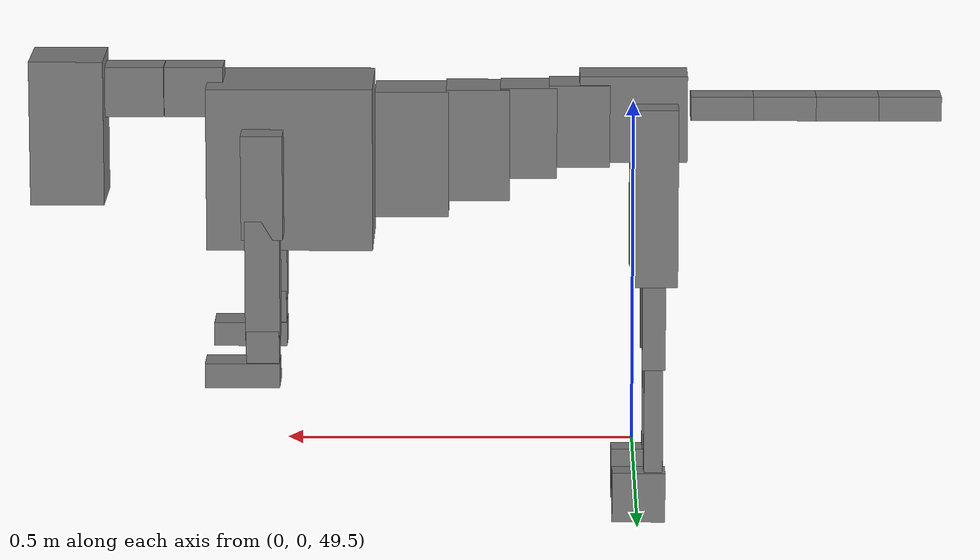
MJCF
<mujoco model="dog">

    <default>
        <joint armature="0.02" stiffness="1" damping="0.2" limited="true"/>
        <geom condim="3" friction="1 0.05 0.05" margin="0.01"/>
        <motor ctrllimited="true" ctrlrange="-1.0 1.0" forcelimited="true" gear="50"/>
    </default>

    <compiler inertiafromgeom="true" angle="radian"/>

    <option timestep="0.016" iterations="50" tolerance="1e-10" solver="Newton" jacobian="dense" cone="pyramidal"/>

    <size nconmax="20000" njmax="60000" nstack="5000000"/>
    <visual>
        <map force="0.1" zfar="30"/>
        <rgba haze="0.15 0.25 0.35 1"/>
        <quality shadowsize="2048"/>
        <global offwidth="800" offheight="800"/>
    </visual>

    <asset>
        <texture type="skybox" builtin="gradient" rgb1="0.3 0.5 0.7" rgb2="0 0 0" width="512" height="512"/>
        <texture name="texplane" type="2d" builtin="checker" rgb1=".2 .3 .4" rgb2=".1 0.15 0.2" width="512" height="512"
                 mark="cross" markrgb=".8 .8 .8"/>
        <texture name="texgeom" type="cube" builtin="flat" mark="cross" width="127" height="1278" rgb1="0.8 0.6 0.4"
                 rgb2="0.8 0.6 0.4" markrgb="1 1 1" random="0.01"/>

        <material name="matplane" reflectance="0.3" texture="texplane" texrepeat="1 1" texuniform="true"/>
        <material name="matgeom" texture="texgeom" texuniform="true" rgba="0.8 0.6 .4 1"/>
    </asset>

    <worldbody>
        <geom name="floor" pos="0 0 0" size="0 0 .25" type="plane" material="matplane" condim="3"/>

        <light directional="false" diffuse=".2 .2 .2" specular="0 0 0" pos="0 0 5" dir="0 0 -1" castshadow="false"/>
        <light mode="targetbodycom" target="torso" directional="false" diffuse=".8 .8 .8" specular="0.3 0.3 0.3"
               pos="0 0 4.0" dir="0 0 -1"/>

        <body name="root" pos="0 0 50">
            <freejoint name="root_1"/>
            <geom type="box" pos="0 0 -0.02" size="0.0774  0.0358  0.063" density="2030"/>

            <body name="spine1" pos="0.054 0 0">
                <joint name="spine1_y" axis="0 1 0" range="0 0.7" limited="true"/>
                <geom type="box" pos="0.02375 0 -0.03" size="0.04375  0.0375  0.05985" density="2030"/>

                <body name="spine2" pos="0.0612 0 0">
                    <joint name="spine2_y" axis="0 1 0" range="-0.15 0.15" limited="true"/>
                    <geom type="box" pos="0.03555  0  -0.04" size="0.04055  0.039  0.06615" density="2030"/>

                    <body name="spine3" pos="0.0730 0 0">
                        <joint name="spine3_y" axis="0 1 0" range="-0.15 0.15" limited="true"/>
                        <geom type="box" pos="0.03555  0  -0.057" size="0.04555  0.0445  0.081" density="2030"/>

                        <body name="spine4" pos="0.0780 0 0">
                            <joint name="spine4_y" axis="0 1 0" range="-0.15 0.15" limited="true"/>
                            <geom type="box" pos="0.05265  0  -0.07" size="0.05265  0.045  0.09135" density="2030"/>

                            <body name="torso" pos="0.1082 0 0">
                                <joint name="torso_y" axis="0 1 0" range="-0.15 0.15" limited="true"/>
                                <geom type="box" pos="0.11925  0  -0.085" size="0.11925  0.085  0.11745"
                                      density="2030"/>

                                <body name="neck1" pos="0.2160  0   0.0180">
                                    <joint name="neck1_y" axis="0 1 0" range="-1.2  -1" limited="true"/>
                                    <geom type="box" pos="0.0423  0  0" size="0.0423  0.03  0.036" density="2325"/>

                                    <body name="neck2" pos="0.0853  0  0">
                                        <joint name="neck2_y" axis="0 1 0" range="0.1  0" limited="true"/>
                                        <geom type="box" pos="0.0423  0  0" size="0.0423  0.03  0.036" density="2325"/>

                                        <body name="head" pos="0.0853  0  0">
                                            <joint name="head_y" axis="0 1 0" range="-0.3  -0.2" limited="true"/>
                                            <geom type="box" pos="0.0531  0  -0.055" size="0.0531  0.06  0.1044"
                                                  density="4030"/>

                                        </body>
                                    </body>
                                </body>

                                <body name="front_shoulder" pos="0.156  0   -0.0480">
                                    <joint name="front_shoulder_y" axis="0 1 0" range="-1 1.5" limited="true"/>
                                    <geom type="box" pos="0 0.13 -0.0486" size="0.0297  0.0254  0.0752" density="1158"/>
                                    <geom type="box" pos="0 -0.13 -0.0486" size="0.0297  0.0254  0.0752"
                                          density="1158"/>

                                    <body name="front_elbow" pos="0  0  -0.0971">
                                        <joint name="front_elbow_y" axis="0 1 0" range="-2 0" limited="true"/>
                                        <geom type="box" pos="0 0.13 -0.0867" size="0.0248  0.0254  0.0867"
                                              density="1081"/>
                                        <geom type="box" pos="0 -0.13 -0.0867" size="0.0248  0.0254  0.0867"
                                              density="1081"/>

                                        <body name="front_wrist" pos="0  0  -0.1735">
                                            <joint name="front_wrist_y" axis="0 1 0" range="-0.2 0" limited="true"/>
                                            <geom type="box" pos="0 0.13 -0.0243" size="0.0235  0.0261  0.0375"
                                                  density="1664"/>
                                            <geom type="box" pos="0 -0.13 -0.0243" size="0.0235  0.0261  0.0375"
                                                  density="1664"/>

                                            <body name="front_finger_end" pos="0  0  -0.0486">
                                                <joint name="front_finger_y" axis="0 1 0" range="-0.4 1"
                                                       limited="true"/>
                                                <geom type="box" pos="0.0291  0.13  -0.0026"
                                                      size="0.0534  0.0291  0.0176" density="1515"/>
                                                <geom type="box" pos="0.0291  -0.13  -0.0026"
                                                      size="0.0534  0.0291  0.0176" density="1515"/>

                                            </body>

                                        </body>
                                    </body>
                                </body>

                            </body>
                        </body>
                    </body>
                </body>
            </body>

            <body name="back_hip" pos="-0.03 0 -0.018">
                <joint name="back_hip_y" axis="0 1 0" range="-1.5 0.3" limited="true"/>
                <geom type="box" pos="0 0.07 -0.1065" size="0.0337  0.0264  0.1293" density="1154"/>
                <geom type="box" pos="0 -0.07 -0.1065" size="0.0337  0.0264  0.1293" density="1154"/>

                <body name="back_knee" pos="0  0  -0.2131">
                    <joint name="back_knee_y" axis="0 1 0" range="0 2.8" limited="true"/>
                    <geom type="box" pos="0 0.07 -0.0660" size="0.0168  0.0165  0.0815" density="1227"/>
                    <geom type="box" pos="0 -0.07 -0.0660" size="0.0168  0.0165  0.0815" density="1227"/>

                    <body name="back_ankle" pos="0  0  -0.1319">
                        <joint name="back_ankle_y" axis="0 1 0" range="-2.2 0" limited="true"/>
                        <geom type="box" pos="0 0.07 -0.0913" size="0.0137  0.0137  0.1026" density="1284"/>
                        <geom type="box" pos="0 -0.07 -0.0913" size="0.0137  0.0137  0.1026" density="1284"/>

                        <body name="back_toe_end" pos="0  0  -0.1827">
                            <joint name="back_toe_y" axis="0 1 0" range="-0.4 1" limited="true"/>
                            <geom type="box" pos="0.0209  0.07  -0.0215" size="0.0384  0.0209  0.0365" density="1515"/>
                            <geom type="box" pos="0.0209  -0.07  -0.0215" size="0.0384  0.0209  0.0365" density="1515"/>

                        </body>
                    </body>
                </body>
            </body>

            <body name="tail1" pos="-0.074 0 -0.006">
                <joint name="tail1_y" axis="0 1 0" range="-0.2 0.2" limited="true"/>
                <geom type="box" pos="-0.0536  0  0" size="0.045  0.025  0.0175" density="1587"/>

                <body name="tail2" pos="-0.09 0 0">
                    <joint name="tail2_y" axis="0 1 0" range="-0.2 0.2" limited="true"/>
                    <geom type="box" pos="-0.0536  0  0" size="0.045  0.025  0.0175" density="1587"/>

                    <body name="tail3" pos="-0.09 0 0">
                        <joint name="tail3_y" axis="0 1 0" range="-0.2 0.2" limited="true"/>
                        <geom type="box" pos="-0.0536  0  0" size="0.045  0.025  0.0175" density="1587"/>

                        <body name="tail4" pos="-0.09 0 0">
                            <joint name="tail4_y" axis="0 1 0" range="-0.2 0.2" limited="true"/>
                            <geom type="box" pos="-0.0536  0  0" size="0.045  0.025  0.0175" density="1587"/>

                        </body>
                    </body>
                </body>
            </body>
        </body>
    </worldbody>

    <actuator>
        <motor joint="spine1_y" forcerange="-150 150     "/>
        <motor joint="spine2_y" forcerange="-150 150     "/>
        <motor joint="spine3_y" forcerange="-150 150     "/>
        <motor joint="spine4_y" forcerange="-150 150     "/>
        <motor joint="torso_y" forcerange="-150 150     "/>
        <motor joint="neck1_y" forcerange="-100 100       "/>
        <motor joint="neck2_y" forcerange="-100 100       "/>
        <motor joint="head_y" forcerange="-150 150       "/>
        <motor joint="front_shoulder_y" forcerange="-158.03 111.16"/>
        <motor joint="front_elbow_y" forcerange="-120.66 164.02"/>
        <motor joint="front_wrist_y" forcerange="-95.73 113.31"/>
        <motor joint="front_finger_y" forcerange="-35.00 80.46"/>
        <motor joint="back_hip_y" forcerange="-231.80 320.55"/>
        <motor joint="back_knee_y" forcerange="-240.00 200.61"/>
        <motor joint="back_angle_y" forcerange="-63.84 55.24"/>
        <motor joint="back_toe_y" forcerange="-23.78 63.63"/>
        <motor joint="tail1_y" forcerange="-50 50     "/>
        <motor joint="tail2_y" forcerange="-50 50     "/>
        <motor joint="tail3_y" forcerange="-50 50     "/>
        <motor joint="tail4_y" forcerange="-50 50     "/>
    </actuator>
</mujoco>
